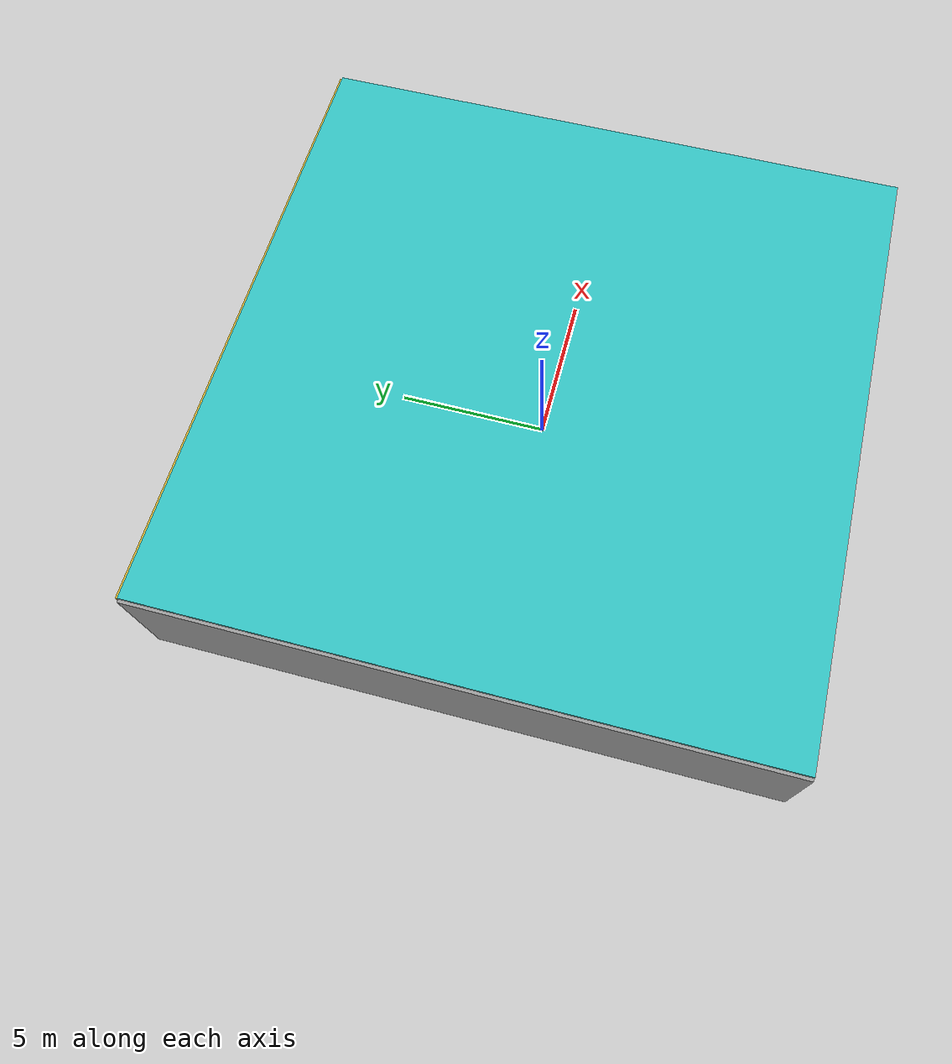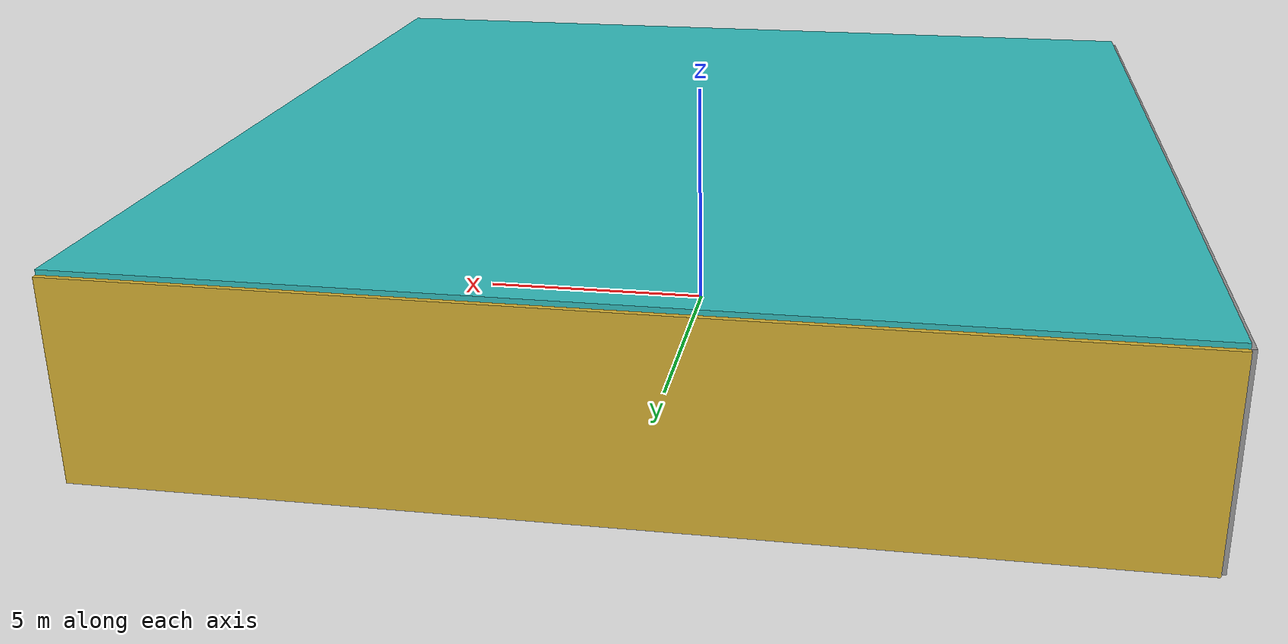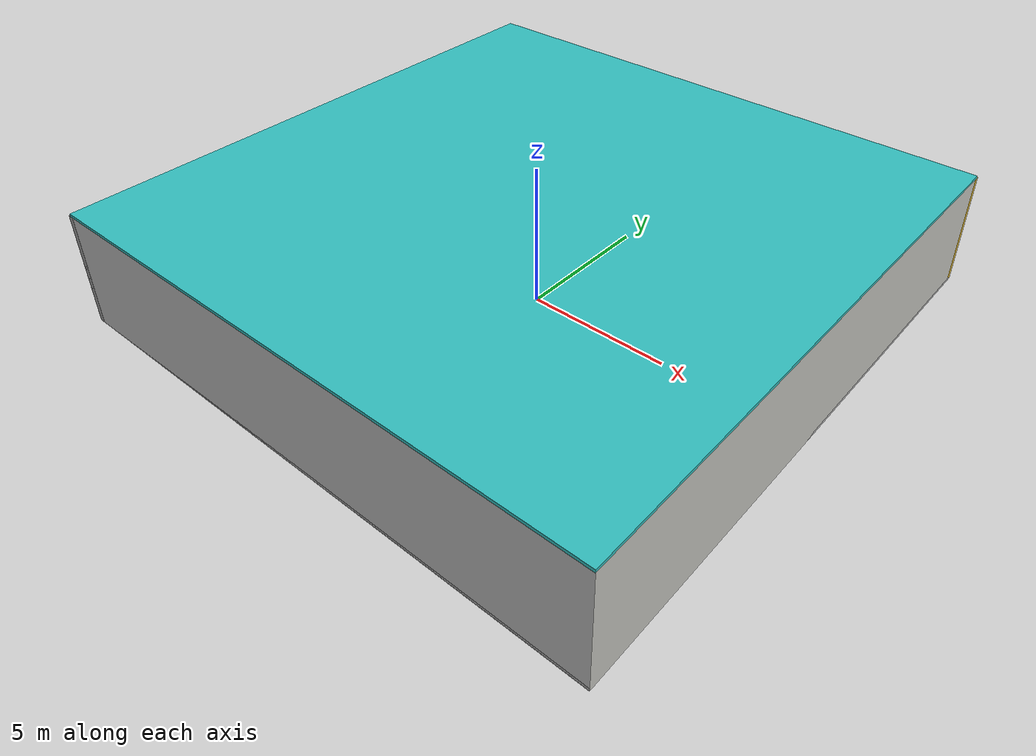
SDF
<sdf version="1.4">
 <world name="default">
  <physics type="ode">
   <max_step_size>0.001</max_step_size>
   <real_time_factor>1</real_time_factor>
   <real_time_update_rate>1000</real_time_update_rate>
   <gravity>0 0 -9.8</gravity>
  </physics>
  <scene><ambient>0.4 0.4 0.4 1</ambient><background>0.7 0.7 0.7 1</background><shadows>1</shadows></scene>
  <model name="Surrounding">
   <static>1</static>
   <link name="Ceiling">
    <collision name="Ceiling_Collision"><geometry><box><size>20 20 0.1</size></box></geometry></collision>
    <visual name="Ceiling_Visual">
     <geometry><box><size>20 20 0.1</size></box></geometry>
     <material>
      <script><uri>file://media/materials/scripts/gazebo.material</uri><name>Gazebo/TurquoiseGlow</name></script>
     </material>
    </visual>
    <pose>0 0 4.05 0 0 0</pose>
   </link>
   <link name="Wall_South">
    <collision name="Wall_South_Collision">
     <geometry><box><size>20 0 4</size></box></geometry>
     <pose>0 0 2 0 -0 0</pose>
    </collision>
    <visual name="Wall_South_Visual">
     <pose>0 0 2 0 -0 0</pose>
     <geometry><box><size>20 0 4</size></box></geometry>
     <material>
      <script><uri>file://media/materials/scripts/gazebo.material</uri><name>Gazebo/LightOff</name></script>
     </material>
    </visual>
    <velocity_decay><linear>0</linear><angular>0</angular></velocity_decay>
    <pose>0 -10 0 0 -0 0</pose>
   </link>
   <link name="Wall_East">
    <collision name="Wall_21_Collision">
     <geometry><box><size>20 0 4</size></box></geometry>
     <pose>0 0 2 0 -0 0</pose>
    </collision>
    <visual name="Wall_21_Visual">
     <pose>0 0 2 0 -0 0</pose>
     <geometry><box><size>20 0 4</size></box></geometry>
     <material>
      <script><uri>file://media/materials/scripts/gazebo.material</uri><name>Gazebo/CeilingTiled</name></script>
     </material>
    </visual>
    <velocity_decay><linear>0</linear><angular>0</angular></velocity_decay>
    <pose>10 0 0 0 -0 1.5708</pose>
   </link>
   <link name="Wall_North">
    <collision name="Wall_22_Collision">
     <geometry><box><size>20 0.2 4</size></box></geometry>
     <pose>0 0 2 0 -0 0</pose>
    </collision>
    <visual name="Wall_22_Visual">
     <pose>0 0 2 0 -0 0</pose>
     <geometry><box><size>20 0.2 4</size></box></geometry>
     <material>
      <script><uri>file://media/materials/scripts/gazebo.material</uri><name>Gazebo/Gold</name></script>
     </material>
    </visual>
    <velocity_decay><linear>0</linear><angular>0</angular></velocity_decay>
    <pose>0 10 0 0 -0 0</pose>
   </link>
   <link name="Wall_West">
    <collision name="Wall_23_Collision">
     <geometry><box><size>20 0.2 4</size></box></geometry>
     <pose>0 0 2 0 -0 0</pose>
    </collision>
    <visual name="Wall_23_Visual">
     <pose>0 0 2 0 -0 0</pose>
     <geometry><box><size>20 0.2 4</size></box></geometry>
     <material>
      <script><uri>file://media/materials/scripts/gazebo.material</uri><name>Gazebo/Grey</name></script>
     </material>
    </visual>
    <velocity_decay><linear>0</linear><angular>0</angular></velocity_decay>
    <pose>-10 0 0 0 0 -1.5708</pose>
   </link>
   <link name="Ground_link">
    <collision name="collision">
     <pose>0 0 .05 0 -0 0</pose>
     <geometry><box><size>20 20 0.1</size></box></geometry>
    </collision>
    <visual name="visual">
     <pose>0 0 .05 0 -0 0</pose>
     <geometry><box><size>20 20 0.1</size></box></geometry>
     <material>
      <script><uri>file://media/materials/scripts/gazebo.material</uri><name>Gazebo/LightOff</name></script>
     </material>
    </visual>
   </link>
   <static>1</static>
  </model>
  <spherical_coordinates>
   <surface_model>EARTH_WGS84</surface_model>
   <latitude_deg>0</latitude_deg>
   <longitude_deg>0</longitude_deg>
   <elevation>0</elevation>
   <heading_deg>0</heading_deg>
  </spherical_coordinates>
  <light name="lightball_0" type="diffuse">
   <diffuse>0.8 0.8 0.8 1</diffuse>
   <specular>0.2 0.2 0.2 1</specular>
   <attenuation>
    <range>100</range>
    <constant>0.7</constant>
    <linear>0.01</linear>
    <quadratic>0.001</quadratic>
   </attenuation>
   <direction>-0.5 0.1 -0.9</direction>
   <pose>-1.47765032763 -0.325574040527 2.1426101675 0 0 0</pose>
  </light>
  <light name="lightball_1" type="diffuse">
   <diffuse>0.8 0.8 0.8 1</diffuse>
   <specular>0.2 0.2 0.2 1</specular>
   <attenuation>
    <range>100</range>
    <constant>0.7</constant>
    <linear>0.01</linear>
    <quadratic>0.001</quadratic>
   </attenuation>
   <direction>-0.5 0.1 -0.9</direction>
   <pose>8.73674633097 9.70568790588 3.51014558305 0 0 0</pose>
  </light>
  <light name="lightball_2" type="diffuse">
   <diffuse>0.8 0.8 0.8 1</diffuse>
   <specular>0.2 0.2 0.2 1</specular>
   <attenuation>
    <range>100</range>
    <constant>0.7</constant>
    <linear>0.01</linear>
    <quadratic>0.001</quadratic>
   </attenuation>
   <direction>-0.5 0.1 -0.9</direction>
   <pose>7.17363429035 9.14988464494 2.09235634141 0 0 0</pose>
  </light>
  <light name="lightball_3" type="diffuse">
   <diffuse>0.8 0.8 0.8 1</diffuse>
   <specular>0.2 0.2 0.2 1</specular>
   <attenuation>
    <range>100</range>
    <constant>0.7</constant>
    <linear>0.01</linear>
    <quadratic>0.001</quadratic>
   </attenuation>
   <direction>-0.5 0.1 -0.9</direction>
   <pose>8.71354939378 -0.163476490648 1.87334109957 0 0 0</pose>
  </light>
  <include><uri>model://table</uri><pose>-7.34077341889 -5.19445806911 0 0 0 2.18189874635</pose></include>
  <include><uri>model://table</uri><pose>-4.97132322187 -8.20309561948 0 0 0 0.822807273688</pose></include>
  <include>
   <uri>model://construction_cone</uri>
   <pose>-1.8604861523 5.27775739645 0 0 0 2.35133437846</pose>
  </include>
  <include><uri>model://cabinet</uri><pose>1.78339355505 -7.1359453974 0 0 0 0.978631959629</pose></include>
  <include><uri>model://cabinet</uri><pose>0.745982259751 2.29178630228 0 0 0 1.16934831166</pose></include>
  <include>
   <uri>model://robocup_3Dsim_goal</uri>
   <pose>3.72949079312 -3.8668766444 0 0 0 2.22324393179</pose>
  </include>
  <include><uri>model://table</uri><pose>4.93277293022 0.973152535189 0 0 0 0.276139766082</pose></include>
  <include>
   <uri>model://textured_shapes</uri>
   <pose>7.17361746872 -6.87662873912 0 0 0 0.500044906019</pose>
  </include>
  <include>
   <uri>model://construction_cone</uri>
   <pose>7.39002204918 -4.90173416265 0 0 0 2.4685359744</pose>
  </include>
  <include>
   <uri>model://construction_cone</uri>
   <pose>7.8359498627 -1.49042751627 0 0 0 2.31639893082</pose>
  </include>
  <include><uri>model://cabinet</uri><pose>7.56672634431 0.899140252324 0 0 0 0.170972592739</pose></include>
 </world>
</sdf>

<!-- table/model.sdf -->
<sdf version="1.5">
  <model name="table">
    <static>true</static>
    <link name="link">
      <collision name="surface">
        <pose>0 0 1.0 0 0 0</pose>
        <geometry>
          <box>
            <size>1.5 0.8 0.03</size>
          </box>
        </geometry>
        <surface>
          <friction>
            <ode>
              <mu>0.6</mu>
              <mu2>0.6</mu2>
            </ode>
          </friction>
        </surface>
      </collision>
      <visual name="visual1">
        <pose>0 0 1.0 0 0 0</pose>
        <geometry>
          <box>
            <size>1.5 0.8 0.03</size>
          </box>
        </geometry>
        <material>
          <script>
            <uri>model://media/materials/scripts/gazebo.material</uri>
            <name>Gazebo/Wood</name>
          </script>
        </material>
      </visual>
      <collision name="front_left_leg">
        <pose>0.68 0.38 0.5 0 0 0</pose>
        <geometry>
          <cylinder>
            <radius>0.02</radius>
            <length>1.0</length>
          </cylinder>
        </geometry>
      </collision>
      <visual name="front_left_leg">
        <pose>0.68 0.38 0.5 0 0 0</pose>
        <geometry>
          <cylinder>
            <radius>0.02</radius>
            <length>1.0</length>
          </cylinder>
        </geometry>
        <material>
          <script>
            <uri>model://media/materials/scripts/gazebo.material</uri>
            <name>Gazebo/Grey</name>
          </script>
        </material>
      </visual>
      <collision name="front_right_leg">
        <pose>0.68 -0.38 0.5 0 0 0</pose>
        <geometry>
          <cylinder>
            <radius>0.02</radius>
            <length>1.0</length>
          </cylinder>
        </geometry>
      </collision>
      <visual name="front_right_leg">
        <pose>0.68 -0.38 0.5 0 0 0</pose>
        <geometry>
          <cylinder>
            <radius>0.02</radius>
            <length>1.0</length>
          </cylinder>
        </geometry>
        <material>
          <script>
            <uri>model://media/materials/scripts/gazebo.material</uri>
            <name>Gazebo/Grey</name>
          </script>
        </material>
      </visual>
      <collision name="back_right_leg">
        <pose>-0.68 -0.38 0.5 0 0 0</pose>
        <geometry>
          <cylinder>
            <radius>0.02</radius>
            <length>1.0</length>
          </cylinder>
        </geometry>
      </collision>
      <visual name="back_right_leg">
        <pose>-0.68 -0.38 0.5 0 0 0</pose>
        <geometry>
          <cylinder>
            <radius>0.02</radius>
            <length>1.0</length>
          </cylinder>
        </geometry>
        <material>
          <script>
            <uri>model://media/materials/scripts/gazebo.material</uri>
            <name>Gazebo/Grey</name>
          </script>
        </material>
      </visual>
      <collision name="back_left_leg">
        <pose>-0.68 0.38 0.5 0 0 0</pose>
        <geometry>
          <cylinder>
            <radius>0.02</radius>
            <length>1.0</length>
          </cylinder>
        </geometry>
      </collision>
      <visual name="back_left_leg">
        <pose>-0.68 0.38 0.5 0 0 0</pose>
        <geometry>
          <cylinder>
            <radius>0.02</radius>
            <length>1.0</length>
          </cylinder>
        </geometry>
        <material>
          <script>
            <uri>model://media/materials/scripts/gazebo.material</uri>
            <name>Gazebo/Grey</name>
          </script>
        </material>
      </visual>
    </link>
  </model>
</sdf>

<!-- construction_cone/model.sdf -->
<sdf version="1.5">
  <model name="Construction Cone">
    <link name="link">
      <collision name="collision">
        <geometry>
          <mesh>
            <scale>10 10 10</scale>
            <uri>file://isr-testbed/construction_cone/meshes/construction_cone.dae</uri>
          </mesh>
        </geometry>
      </collision>
      <visual name="visual">
        <geometry>
          <mesh>
            <scale>10 10 10</scale>
            <uri>file://isr-testbed/construction_cone/meshes/construction_cone.dae</uri>
          </mesh>
        </geometry>
      </visual>
    </link>
  </model>
</sdf>

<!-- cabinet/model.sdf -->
<sdf version="1.5">
  <model name="cabinet">
    <static>true</static>
    <link name="cabinet_bottom_plate">
      <inertial>
        <pose>0 0 -1 0 0 0</pose>
        <inertia>
          <ixx>2.050000</ixx>
          <ixy>0</ixy>
          <ixz>0</ixz>
          <iyy>2.050000</iyy>
          <iyz>0</iyz>
          <izz>2.050000</izz>
        </inertia>
        <mass>25.000000</mass>
      </inertial>
      <collision name="cabinet_bottom_plate_geom">
        <pose>0 0 0.010000 0 0 0</pose>
        <geometry>
          <box>
            <size>0.450000 0.450000 0.020000</size>
          </box>
        </geometry>
      </collision>
      <visual name="cabinet_bottom_plate_geom_visual">
        <pose>0 0 0.010000 0 0 0</pose>
        <geometry>
          <box>
            <size>0.450000 0.450000 0.020000</size>
          </box>
        </geometry>
        <material>
          <script>
            <uri>model://media/materials/scripts/gazebo.material</uri>
            <name>Gazebo/Wood</name>
          </script>
        </material>
      </visual>
      <collision name="cabinet_bottom_plate_geom_cabinet_back_plate">
        <pose>0.235000 0 0.510000 0 0 0</pose>
        <geometry>
          <box>
            <size>0.020000 0.450000 1.020000</size>
          </box>
        </geometry>
      </collision>
      <visual name="cabinet_bottom_plate_geom_cabinet_back_plate_visual">
        <pose>0.235000 0 0.510000 0 0 0</pose>
        <geometry>
          <box>
            <size>0.020000 0.450000 1.020000</size>
          </box>
        </geometry>
        <material>
          <script>
            <uri>model://media/materials/scripts/gazebo.material</uri>
            <name>Gazebo/Wood</name>
          </script>
        </material>
      </visual>
      <collision name="cabinet_bottom_plate_geom_cabinet_left_plate">
        <pose>0 0.235000 0.510000 0 0 0</pose>
        <geometry>
          <box>
            <size>0.450000 0.020000 1.020000</size>
          </box>
        </geometry>
      </collision>
      <visual name="cabinet_bottom_plate_geom_cabinet_left_plate_visual">
        <pose>0 0.235000 0.510000 0 0 0</pose>
        <geometry>
          <box>
            <size>0.450000 0.020000 1.020000</size>
          </box>
        </geometry>
        <material>
          <script>
            <uri>model://media/materials/scripts/gazebo.material</uri>
            <name>Gazebo/Wood</name>
          </script>
        </material>
      </visual>
      <collision name="cabinet_bottom_plate_geom_cabinet_middle_plate">
        <pose>0 0 0.510000 0 0 0</pose>
        <geometry>
          <box>
            <size>0.450000 0.450000 0.020000</size>
          </box>
        </geometry>
      </collision>
      <visual name="cabinet_bottom_plate_geom_cabinet_middle_plate_visual">
        <pose>0 0 0.510000 0 0 0</pose>
        <geometry>
          <box>
            <size>0.450000 0.450000 0.020000</size>
          </box>
        </geometry>
        <material>
          <script>
            <uri>model://media/materials/scripts/gazebo.material</uri>
            <name>Gazebo/Wood</name>
          </script>
        </material>
      </visual>
      <collision name="cabinet_bottom_plate_geom_cabinet_right_plate">
        <pose>0 -0.235000 0.510000 0 0 0</pose>
        <geometry>
          <box>
            <size>0.450000 0.020000 1.020000</size>
          </box>
        </geometry>
      </collision>
      <visual name="cabinet_bottom_plate_geom_cabinet_right_plate_visual">
        <pose>0 -0.235000 0.510000 0 0 0</pose>
        <geometry>
          <box>
            <size>0.450000 0.020000 1.020000</size>
          </box>
        </geometry>
        <material>
          <script>
            <uri>model://media/materials/scripts/gazebo.material</uri>
            <name>Gazebo/Wood</name>
          </script>
        </material>
      </visual>
      <collision name="cabinet_bottom_plate_geom_cabinet_top_plate">
        <pose>0 0 1.010000 0 0 0</pose>
        <geometry>
          <box>
            <size>0.450000 0.450000 0.020000</size>
          </box>
        </geometry>
      </collision>
      <visual name="cabinet_bottom_plate_geom_cabinet_top_plate_visual">
        <pose>0 0 1.010000 0 0 0</pose>
        <geometry>
          <box>
            <size>0.450000 0.450000 0.020000</size>
          </box>
        </geometry>
        <material>
          <script>
            <uri>model://media/materials/scripts/gazebo.material</uri>
            <name>Gazebo/Wood</name>
          </script>
        </material>
      </visual>
    </link>
  </model>
</sdf>

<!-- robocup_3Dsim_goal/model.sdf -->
<sdf version="1.5">
  <model name="robocup_3d_goal">
    <static>true</static>
    <link name="left_post">
      <pose>0 1.05 0.45 0 0 0</pose>
      <collision name="collision">
        <geometry>
          <cylinder>
            <radius>0.05</radius>
            <length>0.9</length>
          </cylinder>
        </geometry>
      </collision>
      <visual name="visual">
        <geometry>
          <cylinder>
            <radius>0.05</radius>
            <length>0.9</length>
          </cylinder>
        </geometry>
        <material>
          <script>
            <uri>file://media/materials/scripts/gazebo.material</uri>
            <name>Gazebo/ZincYellow</name>
          </script>
        </material>
      </visual>
    </link>
    <link name="left_support_horiz_lower">
      <pose>0.30 1.05 0.01 0 0 0</pose>
      <collision name="collision">
        <geometry>
          <box>
            <size>0.50 0.02 0.02</size>
          </box>
        </geometry>
      </collision>
      <visual name="visual">
        <geometry>
          <box>
            <size>0.50 0.02 0.02</size>
          </box>
        </geometry>
        <material>
          <script>
            <uri>file://media/materials/scripts/gazebo.material</uri>
            <name>Gazebo/White</name>
          </script>
        </material>
      </visual>
    </link>
    <link name="left_support_horiz_upper">
      <pose>0.30 1.05 0.79 0 0 0</pose>
      <collision name="collision">
        <geometry>
          <box>
            <size>0.50 0.02 0.02</size>
          </box>
        </geometry>
      </collision>
      <visual name="visual">
        <geometry>
          <box>
            <size>0.50 0.02 0.02</size>
          </box>
        </geometry>
        <material>
          <script>
            <uri>file://media/materials/scripts/gazebo.material</uri>
            <name>Gazebo/White</name>
          </script>
        </material>
      </visual>
    </link>
    <link name="left_support_vertical">
      <pose>0.56 1.05 0.4 0 1.5708 0</pose>
      <collision name="collision">
        <geometry>
          <box>
            <size>0.80 0.02 0.02</size>
          </box>
        </geometry>
      </collision>
      <visual name="visual">
        <geometry>
          <box>
            <size>0.80 0.02 0.02</size>
          </box>
        </geometry>
        <material>
          <script>
            <uri>file://media/materials/scripts/gazebo.material</uri>
            <name>Gazebo/White</name>
          </script>
        </material>
      </visual>
    </link>
    <link name="right_support_horiz_lower">
      <pose>0.30 -1.05 0.01 0 0 0</pose>
      <collision name="collision">
        <geometry>
          <box>
            <size>0.50 0.02 0.02</size>
          </box>
        </geometry>
      </collision>
      <visual name="visual">
        <geometry>
          <box>
            <size>0.50 0.02 0.02</size>
          </box>
        </geometry>
        <material>
          <script>
            <uri>file://media/materials/scripts/gazebo.material</uri>
            <name>Gazebo/White</name>
          </script>
        </material>
      </visual>
    </link>
    <link name="right_support_horiz_upper">
      <pose>0.30 -1.05 0.79 0 0 0</pose>
      <collision name="collision">
        <geometry>
          <box>
            <size>0.50 0.02 0.02</size>
          </box>
        </geometry>
      </collision>
      <visual name="visual">
        <geometry>
          <box>
            <size>0.50 0.02 0.02</size>
          </box>
        </geometry>
        <material>
          <script>
            <uri>file://media/materials/scripts/gazebo.material</uri>
            <name>Gazebo/White</name>
          </script>
        </material>
      </visual>
    </link>
    <link name="right_support_vertical">
      <pose>0.56 -1.05 0.4 0 1.5708 0</pose>
      <collision name="collision">
        <geometry>
          <box>
            <size>0.80 0.02 0.02</size>
          </box>
        </geometry>
      </collision>
      <visual name="visual">
        <geometry>
          <box>
            <size>0.80 0.02 0.02</size>
          </box>
        </geometry>
        <material>
          <script>
            <uri>file://media/materials/scripts/gazebo.material</uri>
            <name>Gazebo/White</name>
          </script>
        </material>
      </visual>
    </link>
    <link name="center_support_horiz_lower">
      <pose>0.56 0 0.01 0 1.5708 0</pose>
      <collision name="collision">
        <geometry>
          <box>
            <size>0.02 2.08 0.02</size>
          </box>
        </geometry>
      </collision>
      <visual name="visual">
        <geometry>
          <box>
            <size>0.02 2.08 0.02</size>
          </box>
        </geometry>
        <material>
          <script>
            <uri>file://media/materials/scripts/gazebo.material</uri>
            <name>Gazebo/White</name>
          </script>
        </material>
      </visual>
    </link>
    <link name="center_support_horiz_upper">
      <pose>0.56 0 0.79 0 1.5708 0</pose>
      <collision name="collision">
        <geometry>
          <box>
            <size>0.02 2.08 0.02</size>
          </box>
        </geometry>
      </collision>
      <visual name="visual">
        <geometry>
          <box>
            <size>0.02 2.08 0.02</size>
          </box>
        </geometry>
        <material>
          <script>
            <uri>file://media/materials/scripts/gazebo.material</uri>
            <name>Gazebo/White</name>
          </script>
        </material>
      </visual>
    </link>
    <link name="right_post">
      <pose>0 -1.05 0.45 0 0 0</pose>
      <collision name="collision">
        <geometry>
          <cylinder>
            <radius>0.05</radius>
            <length>0.9</length>
          </cylinder>
        </geometry>
      </collision>
      <visual name="visual">
        <geometry>
          <cylinder>
            <radius>0.05</radius>
            <length>0.9</length>
          </cylinder>
        </geometry>
        <material>
          <script>
            <uri>file://media/materials/scripts/gazebo.material</uri>
            <name>Gazebo/ZincYellow</name>
          </script>
        </material>
      </visual>
    </link>
    <link name="crossbar">
      <pose>0 0 0.85 1.57 1.57 0</pose>
      <collision name="collision">
        <geometry>
          <cylinder>
            <radius>0.05</radius>
            <length>2.0</length>
          </cylinder>
        </geometry>
      </collision>
      <visual name="visual">
        <geometry>
          <cylinder>
            <radius>0.05</radius>
            <length>2.0</length>
          </cylinder>
        </geometry>
        <material>
          <script>
            <uri>file://media/materials/scripts/gazebo.material</uri>
            <name>Gazebo/ZincYellow</name>
          </script>
        </material>
      </visual>
    </link>
    <link name="center_net">
      <pose>0.56 0 0.40 0 0 0</pose>
      <collision name="collision">
        <geometry>
          <box>
            <size>0.01 2.1 0.80</size>
          </box>
        </geometry>
      </collision>
      <visual name="visual">
        <geometry>
          <box>
            <size>0.01 2.1 0.80</size>
          </box>
        </geometry>
        <material>
          <script>
            <uri>model://../model_source/models/robocup09_spl_field/materials/scripts/</uri>
            <uri>model://../model_source/models/robocup09_spl_field/materials/textures/</uri>
            <name>RoboCup/Net</name>
          </script>
        </material>
      </visual>
    </link>
    <link name="left_net">
      <pose>0.30 1.05 0.40 0 0 0</pose>
      <collision name="collision">
        <geometry>
          <box>
            <size>0.50 0.01 0.76</size>
          </box>
        </geometry>
      </collision>
      <visual name="visual">
        <geometry>
          <box>
            <size>0.50 0.01 0.76</size>
          </box>
        </geometry>
        <material>
          <script>
            <uri>model://../model_source/models/robocup09_spl_field/materials/scripts/</uri>
            <uri>model://../model_source/models/robocup09_spl_field/materials/textures/</uri>
            <name>RoboCup/Net</name>
          </script>
        </material>
      </visual>
    </link>
    <link name="right_net">
      <pose>0.30 -1.05 0.40 0 0 0</pose>
      <collision name="collision">
        <geometry>
          <box>
            <size>0.50 0.01 0.76</size>
          </box>
        </geometry>
      </collision>
      <visual name="visual">
        <geometry>
          <box>
            <size>0.50 0.01 0.76</size>
          </box>
        </geometry>
        <material>
          <script>
            <uri>model://../model_source/models/robocup09_spl_field/materials/scripts/</uri>
            <uri>model://../model_source/models/robocup09_spl_field/materials/textures/</uri>
            <name>RoboCup/Net</name>
          </script>
        </material>
      </visual>
    </link>
  </model>
</sdf>

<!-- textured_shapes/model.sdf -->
<sdf version="1.6">
  <model name="textured_shapes">
    <pose>0 0 0.5 0 0 0</pose>
    <link name="box">
      <pose>0 -1.5 0 0 0 0</pose>
      <collision name="collision">
        <geometry>
          <box>
            <size>1 1 1</size>
          </box>
        </geometry>
      </collision>
      <visual name="visual">
        <geometry>
          <box>
            <size>1 1 1</size>
          </box>
        </geometry>
        <material>
          <script>
            <uri>model://../model_source/models/textured_shapes/materials/scripts</uri>
            <uri>model://../model_source/models/textured_shapes/materials/textures</uri>
            <name>TexturedShape/Squares</name>
          </script>
        </material>
      </visual>
    </link>
    <link name="sphere">
      <collision name="collision">
        <geometry>
          <sphere>
            <radius>0.5</radius>
          </sphere>
        </geometry>
      </collision>
      <visual name="visual">
        <geometry>
          <sphere>
            <radius>0.5</radius>
          </sphere>
        </geometry>
        <material>
          <script>
            <uri>model://../model_source/models/textured_shapes/materials/scripts</uri>
            <uri>model://../model_source/models/textured_shapes/materials/textures</uri>
            <name>TexturedShape/Squares</name>
          </script>
        </material>
      </visual>
    </link>
    <link name="cylinder">
      <pose>0 1.5 0 0 0 0</pose>
      <collision name="collision">
        <geometry>
          <cylinder>
            <radius>0.5</radius>
            <length>1</length>
          </cylinder>
        </geometry>
      </collision>
      <visual name="visual">
        <geometry>
          <cylinder>
            <radius>0.5</radius>
            <length>1</length>
          </cylinder>
        </geometry>
        <material>
          <script>
            <uri>model://../model_source/models/textured_shapes/materials/scripts</uri>
            <uri>model://../model_source/models/textured_shapes/materials/textures</uri>
            <name>TexturedShape/Squares</name>
          </script>
        </material>
      </visual>
    </link>
  </model>
</sdf>
